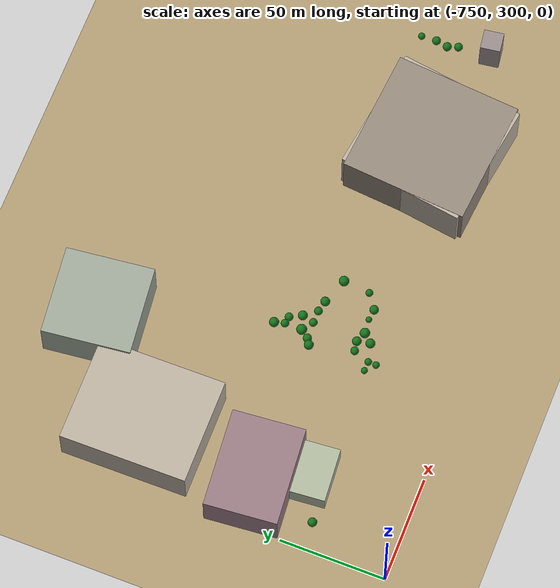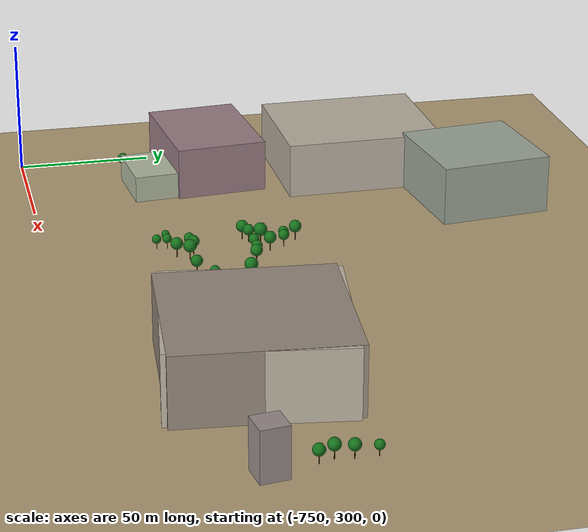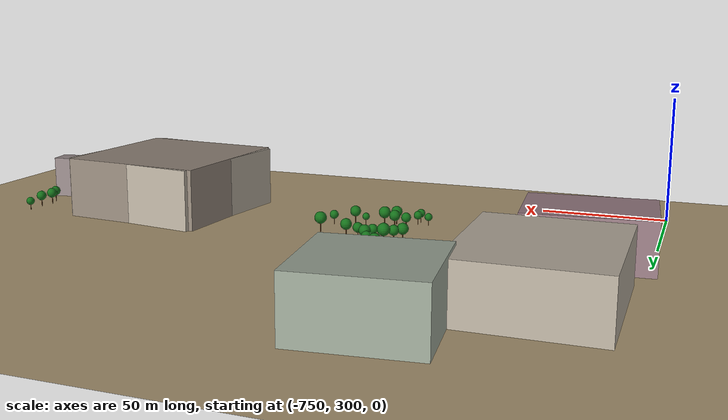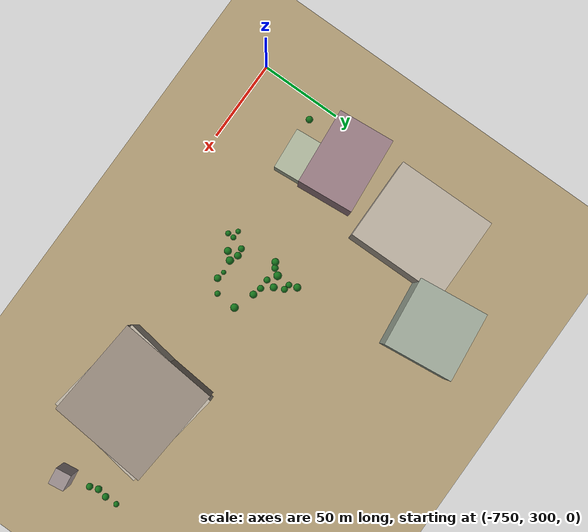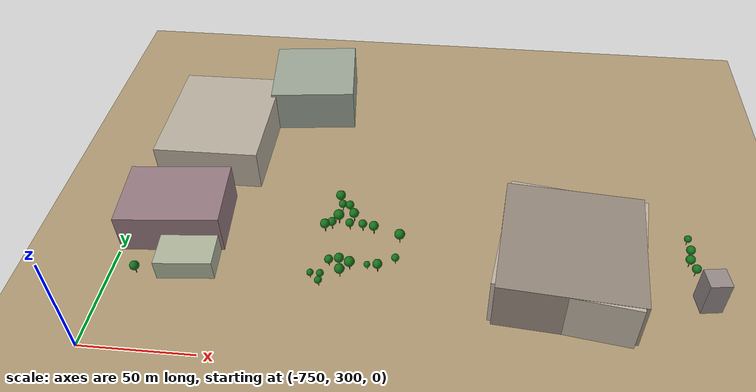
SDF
<sdf version="1.9">
 <world name="crossroad_world">
  <model name="ground_plane">
   <static>true</static>
   <pose>0 0 -0.05 0 0 0</pose>
   <link name="link">
    <collision name="collision">
     <geometry><plane><normal>0 0 1</normal><size>10000 10000</size></plane></geometry>
    </collision>
    <visual name="visual">
     <geometry><plane><normal>0 0 1</normal><size>15000 15000</size></plane></geometry>
     <material><ambient>0.68 0.60 0.45 1</ambient><diffuse>0.68 0.60 0.45 1</diffuse></material>
    </visual>
   </link>
  </model>
  <model name="tree_299">
   <static>true</static>
   <pose>-738.343 339.013 0 0 0 0</pose>
   <link name="link">
    <visual name="trunk">
     <pose>0 0 1.780 0 0 0</pose>
     <geometry><cylinder><radius>0.156</radius><length>3.561</length></cylinder></geometry>
     <material><ambient>0.38 0.22 0.08 1</ambient><diffuse>0.38 0.22 0.08 1</diffuse></material>
    </visual>
    <visual name="canopy">
     <pose>0 0 4.935 0 0 0</pose>
     <geometry><sphere><radius>2.114</radius></sphere></geometry>
     <material><ambient>0.08 0.44 0.10 1</ambient><diffuse>0.08 0.44 0.10 1</diffuse></material>
    </visual>
    <collision name="col">
     <pose>0 0 1.780 0 0 0</pose>
     <geometry><cylinder><radius>0.156</radius><length>3.561</length></cylinder></geometry>
    </collision>
   </link>
  </model>
  <model name="tree_300">
   <static>true</static>
   <pose>-659.817 371.185 0 0 0 0</pose>
   <link name="link">
    <visual name="trunk">
     <pose>0 0 1.866 0 0 0</pose>
     <geometry><cylinder><radius>0.163</radius><length>3.732</length></cylinder></geometry>
     <material><ambient>0.38 0.22 0.08 1</ambient><diffuse>0.38 0.22 0.08 1</diffuse></material>
    </visual>
    <visual name="canopy">
     <pose>0 0 5.173 0 0 0</pose>
     <geometry><sphere><radius>2.216</radius></sphere></geometry>
     <material><ambient>0.08 0.44 0.10 1</ambient><diffuse>0.08 0.44 0.10 1</diffuse></material>
    </visual>
    <collision name="col">
     <pose>0 0 1.866 0 0 0</pose>
     <geometry><cylinder><radius>0.163</radius><length>3.732</length></cylinder></geometry>
    </collision>
   </link>
  </model>
  <model name="tree_301">
   <static>true</static>
   <pose>-656.869 373.028 0 0 0 0</pose>
   <link name="link">
    <visual name="trunk">
     <pose>0 0 1.722 0 0 0</pose>
     <geometry><cylinder><radius>0.151</radius><length>3.445</length></cylinder></geometry>
     <material><ambient>0.38 0.22 0.08 1</ambient><diffuse>0.38 0.22 0.08 1</diffuse></material>
    </visual>
    <visual name="canopy">
     <pose>0 0 4.774 0 0 0</pose>
     <geometry><sphere><radius>2.045</radius></sphere></geometry>
     <material><ambient>0.08 0.44 0.10 1</ambient><diffuse>0.08 0.44 0.10 1</diffuse></material>
    </visual>
    <collision name="col">
     <pose>0 0 1.722 0 0 0</pose>
     <geometry><cylinder><radius>0.151</radius><length>3.445</length></cylinder></geometry>
    </collision>
   </link>
  </model>
  <model name="tree_302">
   <static>true</static>
   <pose>-654.158 376.823 0 0 0 0</pose>
   <link name="link">
    <visual name="trunk">
     <pose>0 0 2.066 0 0 0</pose>
     <geometry><cylinder><radius>0.181</radius><length>4.132</length></cylinder></geometry>
     <material><ambient>0.38 0.22 0.08 1</ambient><diffuse>0.38 0.22 0.08 1</diffuse></material>
    </visual>
    <visual name="canopy">
     <pose>0 0 5.726 0 0 0</pose>
     <geometry><sphere><radius>2.453</radius></sphere></geometry>
     <material><ambient>0.08 0.44 0.10 1</ambient><diffuse>0.08 0.44 0.10 1</diffuse></material>
    </visual>
    <collision name="col">
     <pose>0 0 2.066 0 0 0</pose>
     <geometry><cylinder><radius>0.181</radius><length>4.132</length></cylinder></geometry>
    </collision>
   </link>
  </model>
  <model name="tree_303">
   <static>true</static>
   <pose>-653.647 385.193 0 0 0 0</pose>
   <link name="link">
    <visual name="trunk">
     <pose>0 0 1.593 0 0 0</pose>
     <geometry><cylinder><radius>0.139</radius><length>3.187</length></cylinder></geometry>
     <material><ambient>0.38 0.22 0.08 1</ambient><diffuse>0.38 0.22 0.08 1</diffuse></material>
    </visual>
    <visual name="canopy">
     <pose>0 0 4.417 0 0 0</pose>
     <geometry><sphere><radius>1.892</radius></sphere></geometry>
     <material><ambient>0.08 0.44 0.10 1</ambient><diffuse>0.08 0.44 0.10 1</diffuse></material>
    </visual>
    <collision name="col">
     <pose>0 0 1.593 0 0 0</pose>
     <geometry><cylinder><radius>0.139</radius><length>3.187</length></cylinder></geometry>
    </collision>
   </link>
  </model>
  <model name="tree_304">
   <static>true</static>
   <pose>-655.248 389.900 0 0 0 0</pose>
   <link name="link">
    <visual name="trunk">
     <pose>0 0 1.913 0 0 0</pose>
     <geometry><cylinder><radius>0.167</radius><length>3.827</length></cylinder></geometry>
     <material><ambient>0.38 0.22 0.08 1</ambient><diffuse>0.38 0.22 0.08 1</diffuse></material>
    </visual>
    <visual name="canopy">
     <pose>0 0 5.304 0 0 0</pose>
     <geometry><sphere><radius>2.272</radius></sphere></geometry>
     <material><ambient>0.08 0.44 0.10 1</ambient><diffuse>0.08 0.44 0.10 1</diffuse></material>
    </visual>
    <collision name="col">
     <pose>0 0 1.913 0 0 0</pose>
     <geometry><cylinder><radius>0.167</radius><length>3.827</length></cylinder></geometry>
    </collision>
   </link>
  </model>
  <model name="tree_305">
   <static>true</static>
   <pose>-648.665 373.307 0 0 0 0</pose>
   <link name="link">
    <visual name="trunk">
     <pose>0 0 1.629 0 0 0</pose>
     <geometry><cylinder><radius>0.143</radius><length>3.258</length></cylinder></geometry>
     <material><ambient>0.38 0.22 0.08 1</ambient><diffuse>0.38 0.22 0.08 1</diffuse></material>
    </visual>
    <visual name="canopy">
     <pose>0 0 4.515 0 0 0</pose>
     <geometry><sphere><radius>1.934</radius></sphere></geometry>
     <material><ambient>0.08 0.44 0.10 1</ambient><diffuse>0.08 0.44 0.10 1</diffuse></material>
    </visual>
    <collision name="col">
     <pose>0 0 1.629 0 0 0</pose>
     <geometry><cylinder><radius>0.143</radius><length>3.258</length></cylinder></geometry>
    </collision>
   </link>
  </model>
  <model name="tree_306">
   <static>true</static>
   <pose>-647.406 378.906 0 0 0 0</pose>
   <link name="link">
    <visual name="trunk">
     <pose>0 0 1.884 0 0 0</pose>
     <geometry><cylinder><radius>0.165</radius><length>3.767</length></cylinder></geometry>
     <material><ambient>0.38 0.22 0.08 1</ambient><diffuse>0.38 0.22 0.08 1</diffuse></material>
    </visual>
    <visual name="canopy">
     <pose>0 0 5.221 0 0 0</pose>
     <geometry><sphere><radius>2.237</radius></sphere></geometry>
     <material><ambient>0.08 0.44 0.10 1</ambient><diffuse>0.08 0.44 0.10 1</diffuse></material>
    </visual>
    <collision name="col">
     <pose>0 0 1.884 0 0 0</pose>
     <geometry><cylinder><radius>0.165</radius><length>3.767</length></cylinder></geometry>
    </collision>
   </link>
  </model>
  <model name="tree_307">
   <static>true</static>
   <pose>-650.136 384.553 0 0 0 0</pose>
   <link name="link">
    <visual name="trunk">
     <pose>0 0 1.664 0 0 0</pose>
     <geometry><cylinder><radius>0.146</radius><length>3.329</length></cylinder></geometry>
     <material><ambient>0.38 0.22 0.08 1</ambient><diffuse>0.38 0.22 0.08 1</diffuse></material>
    </visual>
    <visual name="canopy">
     <pose>0 0 4.614 0 0 0</pose>
     <geometry><sphere><radius>1.976</radius></sphere></geometry>
     <material><ambient>0.08 0.44 0.10 1</ambient><diffuse>0.08 0.44 0.10 1</diffuse></material>
    </visual>
    <collision name="col">
     <pose>0 0 1.664 0 0 0</pose>
     <geometry><cylinder><radius>0.146</radius><length>3.329</length></cylinder></geometry>
    </collision>
   </link>
  </model>
  <model name="tree_308">
   <static>true</static>
   <pose>-642.590 373.125 0 0 0 0</pose>
   <link name="link">
    <visual name="trunk">
     <pose>0 0 1.651 0 0 0</pose>
     <geometry><cylinder><radius>0.144</radius><length>3.301</length></cylinder></geometry>
     <material><ambient>0.38 0.22 0.08 1</ambient><diffuse>0.38 0.22 0.08 1</diffuse></material>
    </visual>
    <visual name="canopy">
     <pose>0 0 4.575 0 0 0</pose>
     <geometry><sphere><radius>1.960</radius></sphere></geometry>
     <material><ambient>0.08 0.44 0.10 1</ambient><diffuse>0.08 0.44 0.10 1</diffuse></material>
    </visual>
    <collision name="col">
     <pose>0 0 1.651 0 0 0</pose>
     <geometry><cylinder><radius>0.144</radius><length>3.301</length></cylinder></geometry>
    </collision>
   </link>
  </model>
  <model name="tree_309">
   <static>true</static>
   <pose>-637.316 371.841 0 0 0 0</pose>
   <link name="link">
    <visual name="trunk">
     <pose>0 0 1.845 0 0 0</pose>
     <geometry><cylinder><radius>0.161</radius><length>3.690</length></cylinder></geometry>
     <material><ambient>0.38 0.22 0.08 1</ambient><diffuse>0.38 0.22 0.08 1</diffuse></material>
    </visual>
    <visual name="canopy">
     <pose>0 0 5.115 0 0 0</pose>
     <geometry><sphere><radius>2.191</radius></sphere></geometry>
     <material><ambient>0.08 0.44 0.10 1</ambient><diffuse>0.08 0.44 0.10 1</diffuse></material>
    </visual>
    <collision name="col">
     <pose>0 0 1.845 0 0 0</pose>
     <geometry><cylinder><radius>0.161</radius><length>3.690</length></cylinder></geometry>
    </collision>
   </link>
  </model>
  <model name="tree_310">
   <static>true</static>
   <pose>-624.948 367.414 0 0 0 0</pose>
   <link name="link">
    <visual name="trunk">
     <pose>0 0 2.009 0 0 0</pose>
     <geometry><cylinder><radius>0.176</radius><length>4.018</length></cylinder></geometry>
     <material><ambient>0.38 0.22 0.08 1</ambient><diffuse>0.38 0.22 0.08 1</diffuse></material>
    </visual>
    <visual name="canopy">
     <pose>0 0 5.568 0 0 0</pose>
     <geometry><sphere><radius>2.385</radius></sphere></geometry>
     <material><ambient>0.08 0.44 0.10 1</ambient><diffuse>0.08 0.44 0.10 1</diffuse></material>
    </visual>
    <collision name="col">
     <pose>0 0 2.009 0 0 0</pose>
     <geometry><cylinder><radius>0.176</radius><length>4.018</length></cylinder></geometry>
    </collision>
   </link>
  </model>
  <model name="tree_313">
   <static>true</static>
   <pose>-661.773 343.405 0 0 0 0</pose>
   <link name="link">
    <visual name="trunk">
     <pose>0 0 1.290 0 0 0</pose>
     <geometry><cylinder><radius>0.113</radius><length>2.580</length></cylinder></geometry>
     <material><ambient>0.38 0.22 0.08 1</ambient><diffuse>0.38 0.22 0.08 1</diffuse></material>
    </visual>
    <visual name="canopy">
     <pose>0 0 3.575 0 0 0</pose>
     <geometry><sphere><radius>1.532</radius></sphere></geometry>
     <material><ambient>0.08 0.44 0.10 1</ambient><diffuse>0.08 0.44 0.10 1</diffuse></material>
    </visual>
    <collision name="col">
     <pose>0 0 1.290 0 0 0</pose>
     <geometry><cylinder><radius>0.113</radius><length>2.580</length></cylinder></geometry>
    </collision>
   </link>
  </model>
  <model name="tree_314">
   <static>true</static>
   <pose>-657.456 339.418 0 0 0 0</pose>
   <link name="link">
    <visual name="trunk">
     <pose>0 0 1.405 0 0 0</pose>
     <geometry><cylinder><radius>0.123</radius><length>2.810</length></cylinder></geometry>
     <material><ambient>0.38 0.22 0.08 1</ambient><diffuse>0.38 0.22 0.08 1</diffuse></material>
    </visual>
    <visual name="canopy">
     <pose>0 0 3.895 0 0 0</pose>
     <geometry><sphere><radius>1.669</radius></sphere></geometry>
     <material><ambient>0.08 0.44 0.10 1</ambient><diffuse>0.08 0.44 0.10 1</diffuse></material>
    </visual>
    <collision name="col">
     <pose>0 0 1.405 0 0 0</pose>
     <geometry><cylinder><radius>0.123</radius><length>2.810</length></cylinder></geometry>
    </collision>
   </link>
  </model>
  <model name="tree_315">
   <static>true</static>
   <pose>-657.323 343.214 0 0 0 0</pose>
   <link name="link">
    <visual name="trunk">
     <pose>0 0 1.402 0 0 0</pose>
     <geometry><cylinder><radius>0.123</radius><length>2.804</length></cylinder></geometry>
     <material><ambient>0.38 0.22 0.08 1</ambient><diffuse>0.38 0.22 0.08 1</diffuse></material>
    </visual>
    <visual name="canopy">
     <pose>0 0 3.886 0 0 0</pose>
     <geometry><sphere><radius>1.665</radius></sphere></geometry>
     <material><ambient>0.08 0.44 0.10 1</ambient><diffuse>0.08 0.44 0.10 1</diffuse></material>
    </visual>
    <collision name="col">
     <pose>0 0 1.402 0 0 0</pose>
     <geometry><cylinder><radius>0.123</radius><length>2.804</length></cylinder></geometry>
    </collision>
   </link>
  </model>
  <model name="tree_316">
   <static>true</static>
   <pose>-654.716 350.825 0 0 0 0</pose>
   <link name="link">
    <visual name="trunk">
     <pose>0 0 1.615 0 0 0</pose>
     <geometry><cylinder><radius>0.141</radius><length>3.230</length></cylinder></geometry>
     <material><ambient>0.38 0.22 0.08 1</ambient><diffuse>0.38 0.22 0.08 1</diffuse></material>
    </visual>
    <visual name="canopy">
     <pose>0 0 4.476 0 0 0</pose>
     <geometry><sphere><radius>1.918</radius></sphere></geometry>
     <material><ambient>0.08 0.44 0.10 1</ambient><diffuse>0.08 0.44 0.10 1</diffuse></material>
    </visual>
    <collision name="col">
     <pose>0 0 1.615 0 0 0</pose>
     <geometry><cylinder><radius>0.141</radius><length>3.230</length></cylinder></geometry>
    </collision>
   </link>
  </model>
  <model name="tree_317">
   <static>true</static>
   <pose>-649.081 345.362 0 0 0 0</pose>
   <link name="link">
    <visual name="trunk">
     <pose>0 0 1.875 0 0 0</pose>
     <geometry><cylinder><radius>0.164</radius><length>3.750</length></cylinder></geometry>
     <material><ambient>0.38 0.22 0.08 1</ambient><diffuse>0.38 0.22 0.08 1</diffuse></material>
    </visual>
    <visual name="canopy">
     <pose>0 0 5.197 0 0 0</pose>
     <geometry><sphere><radius>2.226</radius></sphere></geometry>
     <material><ambient>0.08 0.44 0.10 1</ambient><diffuse>0.08 0.44 0.10 1</diffuse></material>
    </visual>
    <collision name="col">
     <pose>0 0 1.875 0 0 0</pose>
     <geometry><cylinder><radius>0.164</radius><length>3.750</length></cylinder></geometry>
    </collision>
   </link>
  </model>
  <model name="tree_318">
   <static>true</static>
   <pose>-650.225 351.539 0 0 0 0</pose>
   <link name="link">
    <visual name="trunk">
     <pose>0 0 1.815 0 0 0</pose>
     <geometry><cylinder><radius>0.159</radius><length>3.630</length></cylinder></geometry>
     <material><ambient>0.38 0.22 0.08 1</ambient><diffuse>0.38 0.22 0.08 1</diffuse></material>
    </visual>
    <visual name="canopy">
     <pose>0 0 5.031 0 0 0</pose>
     <geometry><sphere><radius>2.155</radius></sphere></geometry>
     <material><ambient>0.08 0.44 0.10 1</ambient><diffuse>0.08 0.44 0.10 1</diffuse></material>
    </visual>
    <collision name="col">
     <pose>0 0 1.815 0 0 0</pose>
     <geometry><cylinder><radius>0.159</radius><length>3.630</length></cylinder></geometry>
    </collision>
   </link>
  </model>
  <model name="tree_319">
   <static>true</static>
   <pose>-645.327 349.480 0 0 0 0</pose>
   <link name="link">
    <visual name="trunk">
     <pose>0 0 1.979 0 0 0</pose>
     <geometry><cylinder><radius>0.173</radius><length>3.958</length></cylinder></geometry>
     <material><ambient>0.38 0.22 0.08 1</ambient><diffuse>0.38 0.22 0.08 1</diffuse></material>
    </visual>
    <visual name="canopy">
     <pose>0 0 5.486 0 0 0</pose>
     <geometry><sphere><radius>2.350</radius></sphere></geometry>
     <material><ambient>0.08 0.44 0.10 1</ambient><diffuse>0.08 0.44 0.10 1</diffuse></material>
    </visual>
    <collision name="col">
     <pose>0 0 1.979 0 0 0</pose>
     <geometry><cylinder><radius>0.173</radius><length>3.958</length></cylinder></geometry>
    </collision>
   </link>
  </model>
  <model name="tree_320">
   <static>true</static>
   <pose>-637.733 350.386 0 0 0 0</pose>
   <link name="link">
    <visual name="trunk">
     <pose>0 0 1.206 0 0 0</pose>
     <geometry><cylinder><radius>0.106</radius><length>2.412</length></cylinder></geometry>
     <material><ambient>0.38 0.22 0.08 1</ambient><diffuse>0.38 0.22 0.08 1</diffuse></material>
    </visual>
    <visual name="canopy">
     <pose>0 0 3.343 0 0 0</pose>
     <geometry><sphere><radius>1.432</radius></sphere></geometry>
     <material><ambient>0.08 0.44 0.10 1</ambient><diffuse>0.08 0.44 0.10 1</diffuse></material>
    </visual>
    <collision name="col">
     <pose>0 0 1.206 0 0 0</pose>
     <geometry><cylinder><radius>0.106</radius><length>2.412</length></cylinder></geometry>
    </collision>
   </link>
  </model>
  <model name="tree_321">
   <static>true</static>
   <pose>-632.979 349.672 0 0 0 0</pose>
   <link name="link">
    <visual name="trunk">
     <pose>0 0 1.810 0 0 0</pose>
     <geometry><cylinder><radius>0.158</radius><length>3.620</length></cylinder></geometry>
     <material><ambient>0.38 0.22 0.08 1</ambient><diffuse>0.38 0.22 0.08 1</diffuse></material>
    </visual>
    <visual name="canopy">
     <pose>0 0 5.016 0 0 0</pose>
     <geometry><sphere><radius>2.149</radius></sphere></geometry>
     <material><ambient>0.08 0.44 0.10 1</ambient><diffuse>0.08 0.44 0.10 1</diffuse></material>
    </visual>
    <collision name="col">
     <pose>0 0 1.810 0 0 0</pose>
     <geometry><cylinder><radius>0.158</radius><length>3.620</length></cylinder></geometry>
    </collision>
   </link>
  </model>
  <model name="tree_322">
   <static>true</static>
   <pose>-625.678 354.744 0 0 0 0</pose>
   <link name="link">
    <visual name="trunk">
     <pose>0 0 1.475 0 0 0</pose>
     <geometry><cylinder><radius>0.129</radius><length>2.949</length></cylinder></geometry>
     <material><ambient>0.38 0.22 0.08 1</ambient><diffuse>0.38 0.22 0.08 1</diffuse></material>
    </visual>
    <visual name="canopy">
     <pose>0 0 4.088 0 0 0</pose>
     <geometry><sphere><radius>1.751</radius></sphere></geometry>
     <material><ambient>0.08 0.44 0.10 1</ambient><diffuse>0.08 0.44 0.10 1</diffuse></material>
    </visual>
    <collision name="col">
     <pose>0 0 1.475 0 0 0</pose>
     <geometry><cylinder><radius>0.129</radius><length>2.949</length></cylinder></geometry>
    </collision>
   </link>
  </model>
  <model name="tree_327">
   <static>true</static>
   <pose>-494.564 360.043 0 0 0 0</pose>
   <link name="link">
    <visual name="trunk">
     <pose>0 0 1.689 0 0 0</pose>
     <geometry><cylinder><radius>0.148</radius><length>3.379</length></cylinder></geometry>
     <material><ambient>0.38 0.22 0.08 1</ambient><diffuse>0.38 0.22 0.08 1</diffuse></material>
    </visual>
    <visual name="canopy">
     <pose>0 0 4.683 0 0 0</pose>
     <geometry><sphere><radius>2.006</radius></sphere></geometry>
     <material><ambient>0.08 0.44 0.10 1</ambient><diffuse>0.08 0.44 0.10 1</diffuse></material>
    </visual>
    <collision name="col">
     <pose>0 0 1.689 0 0 0</pose>
     <geometry><cylinder><radius>0.148</radius><length>3.379</length></cylinder></geometry>
    </collision>
   </link>
  </model>
  <model name="tree_328">
   <static>true</static>
   <pose>-496.391 365.024 0 0 0 0</pose>
   <link name="link">
    <visual name="trunk">
     <pose>0 0 1.759 0 0 0</pose>
     <geometry><cylinder><radius>0.154</radius><length>3.519</length></cylinder></geometry>
     <material><ambient>0.38 0.22 0.08 1</ambient><diffuse>0.38 0.22 0.08 1</diffuse></material>
    </visual>
    <visual name="canopy">
     <pose>0 0 4.877 0 0 0</pose>
     <geometry><sphere><radius>2.089</radius></sphere></geometry>
     <material><ambient>0.08 0.44 0.10 1</ambient><diffuse>0.08 0.44 0.10 1</diffuse></material>
    </visual>
    <collision name="col">
     <pose>0 0 1.759 0 0 0</pose>
     <geometry><cylinder><radius>0.154</radius><length>3.519</length></cylinder></geometry>
    </collision>
   </link>
  </model>
  <model name="tree_329">
   <static>true</static>
   <pose>-495.239 370.799 0 0 0 0</pose>
   <link name="link">
    <visual name="trunk">
     <pose>0 0 1.704 0 0 0</pose>
     <geometry><cylinder><radius>0.149</radius><length>3.407</length></cylinder></geometry>
     <material><ambient>0.38 0.22 0.08 1</ambient><diffuse>0.38 0.22 0.08 1</diffuse></material>
    </visual>
    <visual name="canopy">
     <pose>0 0 4.722 0 0 0</pose>
     <geometry><sphere><radius>2.023</radius></sphere></geometry>
     <material><ambient>0.08 0.44 0.10 1</ambient><diffuse>0.08 0.44 0.10 1</diffuse></material>
    </visual>
    <collision name="col">
     <pose>0 0 1.704 0 0 0</pose>
     <geometry><cylinder><radius>0.149</radius><length>3.407</length></cylinder></geometry>
    </collision>
   </link>
  </model>
  <model name="tree_330">
   <static>true</static>
   <pose>-495.160 378.182 0 0 0 0</pose>
   <link name="link">
    <visual name="trunk">
     <pose>0 0 1.394 0 0 0</pose>
     <geometry><cylinder><radius>0.122</radius><length>2.789</length></cylinder></geometry>
     <material><ambient>0.38 0.22 0.08 1</ambient><diffuse>0.38 0.22 0.08 1</diffuse></material>
    </visual>
    <visual name="canopy">
     <pose>0 0 3.865 0 0 0</pose>
     <geometry><sphere><radius>1.656</radius></sphere></geometry>
     <material><ambient>0.08 0.44 0.10 1</ambient><diffuse>0.08 0.44 0.10 1</diffuse></material>
    </visual>
    <collision name="col">
     <pose>0 0 1.394 0 0 0</pose>
     <geometry><cylinder><radius>0.122</radius><length>2.789</length></cylinder></geometry>
    </collision>
   </link>
  </model>
  <model name="building_119">
   <static>true</static>
   <pose>-721.374 427.077 10.310 0 0 0.008</pose>
   <link name="link">
    <visual name="body">
     <geometry><box><size>49.92 60.00 20.62</size></box></geometry>
     <material><ambient>0.72 0.68 0.62 1</ambient><diffuse>0.72 0.68 0.62 1</diffuse></material>
    </visual>
    <collision name="col"><geometry><box><size>49.92 60.00 20.62</size></box></geometry></collision>
   </link>
  </model>
  <model name="building_120">
   <static>true</static>
   <pose>-680.245 465.408 10.912 0 0 0.113</pose>
   <link name="link">
    <visual name="body">
     <geometry><box><size>42.04 41.85 21.82</size></box></geometry>
     <material><ambient>0.61 0.65 0.59 1</ambient><diffuse>0.61 0.65 0.59 1</diffuse></material>
    </visual>
    <collision name="col"><geometry><box><size>42.04 41.85 21.82</size></box></geometry></collision>
   </link>
  </model>
  <model name="building_123">
   <static>true</static>
   <pose>-717.487 354.928 4.928 0 0 0.082</pose>
   <link name="link">
    <visual name="body">
     <geometry><box><size>25.40 34.11 9.86</size></box></geometry>
     <material><ambient>0.68 0.71 0.61 1</ambient><diffuse>0.68 0.71 0.61 1</diffuse></material>
    </visual>
    <collision name="col"><geometry><box><size>25.40 34.11 9.86</size></box></geometry></collision>
   </link>
  </model>
  <model name="building_124">
   <static>true</static>
   <pose>-727.992 370.637 9.720 0 0 0.088</pose>
   <link name="link">
    <visual name="body">
     <geometry><box><size>46.41 34.27 19.44</size></box></geometry>
     <material><ambient>0.59 0.48 0.51 1</ambient><diffuse>0.59 0.48 0.51 1</diffuse></material>
    </visual>
    <collision name="col"><geometry><box><size>46.41 34.27 19.44</size></box></geometry></collision>
   </link>
  </model>
  <model name="building_364">
   <static>true</static>
   <pose>-491.677 344.998 8.672 0 0 0.139</pose>
   <link name="link">
    <visual name="body">
     <geometry><box><size>9.48 9.47 17.34</size></box></geometry>
     <material><ambient>0.59 0.54 0.54 1</ambient><diffuse>0.59 0.54 0.54 1</diffuse></material>
    </visual>
    <collision name="col"><geometry><box><size>9.48 9.47 17.34</size></box></geometry></collision>
   </link>
  </model>
  <model name="building_595">
   <static>true</static>
   <pose>-550.799 353.444 12.085 0 0 -0.144</pose>
   <link name="link">
    <visual name="body">
     <geometry><box><size>60.00 60.00 24.17</size></box></geometry>
     <material><ambient>0.73 0.69 0.63 1</ambient><diffuse>0.73 0.69 0.63 1</diffuse></material>
    </visual>
    <collision name="col"><geometry><box><size>60.00 60.00 24.17</size></box></geometry></collision>
   </link>
  </model>
  <model name="building_596">
   <static>true</static>
   <pose>-550.799 353.444 12.141 0 0 -0.085</pose>
   <link name="link">
    <visual name="body">
     <geometry><box><size>60.00 60.00 24.28</size></box></geometry>
     <material><ambient>0.58 0.53 0.48 1</ambient><diffuse>0.58 0.53 0.48 1</diffuse></material>
    </visual>
    <collision name="col"><geometry><box><size>60.00 60.00 24.28</size></box></geometry></collision>
   </link>
  </model>
 </world>
</sdf>
